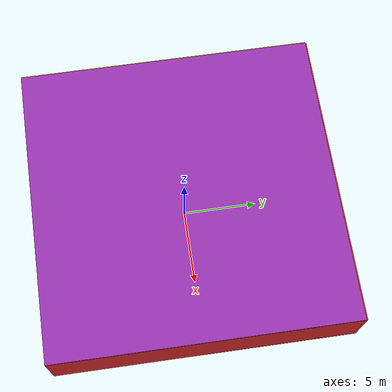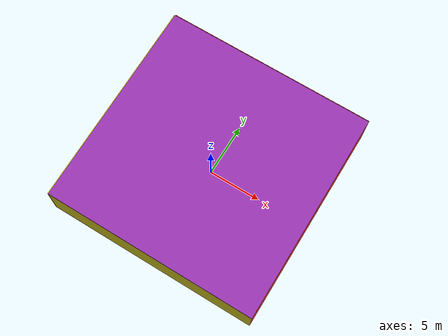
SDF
<sdf version="1.4">
 <world name="default">
  <physics type="ode">
   <max_step_size>0.001</max_step_size>
   <real_time_factor>1</real_time_factor>
   <real_time_update_rate>1000</real_time_update_rate>
   <gravity>0 0 -9.8</gravity>
  </physics>
  <scene><ambient>0.4 0.4 0.4 1</ambient><background>0.7 0.7 0.7 1</background><shadows>1</shadows></scene>
  <model name="Surrounding">
   <static>1</static>
   <link name="Ceiling">
    <collision name="Ceiling_Collision"><geometry><box><size>20 20 0.1</size></box></geometry></collision>
    <visual name="Ceiling_Visual">
     <geometry><box><size>20 20 0.1</size></box></geometry>
     <material>
      <script><uri>file://media/materials/scripts/gazebo.material</uri><name>Gazebo/PurpleGlow</name></script>
     </material>
    </visual>
    <pose>0 0 4.05 0 0 0</pose>
   </link>
   <link name="Wall_South">
    <collision name="Wall_South_Collision">
     <geometry><box><size>20 0 4</size></box></geometry>
     <pose>0 0 2 0 -0 0</pose>
    </collision>
    <visual name="Wall_South_Visual">
     <pose>0 0 2 0 -0 0</pose>
     <geometry><box><size>20 0 4</size></box></geometry>
     <material>
      <script><uri>file://media/materials/scripts/gazebo.material</uri><name>Gazebo/Yellow</name></script>
     </material>
    </visual>
    <velocity_decay><linear>0</linear><angular>0</angular></velocity_decay>
    <pose>0 -10 0 0 -0 0</pose>
   </link>
   <link name="Wall_East">
    <collision name="Wall_21_Collision">
     <geometry><box><size>20 0 4</size></box></geometry>
     <pose>0 0 2 0 -0 0</pose>
    </collision>
    <visual name="Wall_21_Visual">
     <pose>0 0 2 0 -0 0</pose>
     <geometry><box><size>20 0 4</size></box></geometry>
     <material>
      <script><uri>file://media/materials/scripts/gazebo.material</uri><name>Gazebo/RedBright</name></script>
     </material>
    </visual>
    <velocity_decay><linear>0</linear><angular>0</angular></velocity_decay>
    <pose>10 0 0 0 -0 1.5708</pose>
   </link>
   <link name="Wall_North">
    <collision name="Wall_22_Collision">
     <geometry><box><size>20 0.2 4</size></box></geometry>
     <pose>0 0 2 0 -0 0</pose>
    </collision>
    <visual name="Wall_22_Visual">
     <pose>0 0 2 0 -0 0</pose>
     <geometry><box><size>20 0.2 4</size></box></geometry>
     <material>
      <script><uri>file://media/materials/scripts/gazebo.material</uri><name>Gazebo/Red</name></script>
     </material>
    </visual>
    <velocity_decay><linear>0</linear><angular>0</angular></velocity_decay>
    <pose>0 10 0 0 -0 0</pose>
   </link>
   <link name="Wall_West">
    <collision name="Wall_23_Collision">
     <geometry><box><size>20 0.2 4</size></box></geometry>
     <pose>0 0 2 0 -0 0</pose>
    </collision>
    <visual name="Wall_23_Visual">
     <pose>0 0 2 0 -0 0</pose>
     <geometry><box><size>20 0.2 4</size></box></geometry>
     <material>
      <script><uri>file://media/materials/scripts/gazebo.material</uri><name>Gazebo/YellowGlow</name></script>
     </material>
    </visual>
    <velocity_decay><linear>0</linear><angular>0</angular></velocity_decay>
    <pose>-10 0 0 0 0 -1.5708</pose>
   </link>
   <link name="Ground_link">
    <collision name="collision">
     <pose>0 0 .05 0 -0 0</pose>
     <geometry><box><size>20 20 0.1</size></box></geometry>
    </collision>
    <visual name="visual">
     <pose>0 0 .05 0 -0 0</pose>
     <geometry><box><size>20 20 0.1</size></box></geometry>
     <material>
      <script><uri>file://media/materials/scripts/gazebo.material</uri><name>Gazebo/RedTransparent</name></script>
     </material>
    </visual>
   </link>
   <static>1</static>
  </model>
  <spherical_coordinates>
   <surface_model>EARTH_WGS84</surface_model>
   <latitude_deg>0</latitude_deg>
   <longitude_deg>0</longitude_deg>
   <elevation>0</elevation>
   <heading_deg>0</heading_deg>
  </spherical_coordinates>
  <light name="lightball_0" type="diffuse">
   <diffuse>0.8 0.8 0.8 1</diffuse>
   <specular>0.2 0.2 0.2 1</specular>
   <attenuation>
    <range>100</range>
    <constant>0.7</constant>
    <linear>0.01</linear>
    <quadratic>0.001</quadratic>
   </attenuation>
   <direction>-0.5 0.1 -0.9</direction>
   <pose>-9.75234250186 -4.87847903282 1.09683213277 0 0 0</pose>
  </light>
  <light name="lightball_1" type="diffuse">
   <diffuse>0.8 0.8 0.8 1</diffuse>
   <specular>0.2 0.2 0.2 1</specular>
   <attenuation>
    <range>100</range>
    <constant>0.7</constant>
    <linear>0.01</linear>
    <quadratic>0.001</quadratic>
   </attenuation>
   <direction>-0.5 0.1 -0.9</direction>
   <pose>3.05915667364 -8.10837009262 1.25406906646 0 0 0</pose>
  </light>
  <light name="lightball_2" type="diffuse">
   <diffuse>0.8 0.8 0.8 1</diffuse>
   <specular>0.2 0.2 0.2 1</specular>
   <attenuation>
    <range>100</range>
    <constant>0.7</constant>
    <linear>0.01</linear>
    <quadratic>0.001</quadratic>
   </attenuation>
   <direction>-0.5 0.1 -0.9</direction>
   <pose>-3.86799264385 -3.39205752775 2.06234881167 0 0 0</pose>
  </light>
  <light name="lightball_3" type="diffuse">
   <diffuse>0.8 0.8 0.8 1</diffuse>
   <specular>0.2 0.2 0.2 1</specular>
   <attenuation>
    <range>100</range>
    <constant>0.7</constant>
    <linear>0.01</linear>
    <quadratic>0.001</quadratic>
   </attenuation>
   <direction>-0.5 0.1 -0.9</direction>
   <pose>-4.33331504351 -2.26508326791 2.92391996742 0 0 0</pose>
  </light>
  <light name="lightball_4" type="diffuse">
   <diffuse>0.8 0.8 0.8 1</diffuse>
   <specular>0.2 0.2 0.2 1</specular>
   <attenuation>
    <range>100</range>
    <constant>0.7</constant>
    <linear>0.01</linear>
    <quadratic>0.001</quadratic>
   </attenuation>
   <direction>-0.5 0.1 -0.9</direction>
   <pose>1.15157217548 0.938555629288 2.800534238 0 0 0</pose>
  </light>
  <light name="lightball_5" type="diffuse">
   <diffuse>0.8 0.8 0.8 1</diffuse>
   <specular>0.2 0.2 0.2 1</specular>
   <attenuation>
    <range>100</range>
    <constant>0.7</constant>
    <linear>0.01</linear>
    <quadratic>0.001</quadratic>
   </attenuation>
   <direction>-0.5 0.1 -0.9</direction>
   <pose>8.57132061455 8.24096596774 1.33816489009 0 0 0</pose>
  </light>
  <light name="lightball_6" type="diffuse">
   <diffuse>0.8 0.8 0.8 1</diffuse>
   <specular>0.2 0.2 0.2 1</specular>
   <attenuation>
    <range>100</range>
    <constant>0.7</constant>
    <linear>0.01</linear>
    <quadratic>0.001</quadratic>
   </attenuation>
   <direction>-0.5 0.1 -0.9</direction>
   <pose>-6.99624469636 9.46346110575 1.76448112507 0 0 0</pose>
  </light>
  <light name="lightball_7" type="diffuse">
   <diffuse>0.8 0.8 0.8 1</diffuse>
   <specular>0.2 0.2 0.2 1</specular>
   <attenuation>
    <range>100</range>
    <constant>0.7</constant>
    <linear>0.01</linear>
    <quadratic>0.001</quadratic>
   </attenuation>
   <direction>-0.5 0.1 -0.9</direction>
   <pose>0.939266851568 0.298610910467 1.63913609376 0 0 0</pose>
  </light>
  <light name="lightball_8" type="diffuse">
   <diffuse>0.8 0.8 0.8 1</diffuse>
   <specular>0.2 0.2 0.2 1</specular>
   <attenuation>
    <range>100</range>
    <constant>0.7</constant>
    <linear>0.01</linear>
    <quadratic>0.001</quadratic>
   </attenuation>
   <direction>-0.5 0.1 -0.9</direction>
   <pose>7.42512293831 -1.3202632621 3.84103830908 0 0 0</pose>
  </light>
  <light name="lightball_9" type="diffuse">
   <diffuse>0.8 0.8 0.8 1</diffuse>
   <specular>0.2 0.2 0.2 1</specular>
   <attenuation>
    <range>100</range>
    <constant>0.7</constant>
    <linear>0.01</linear>
    <quadratic>0.001</quadratic>
   </attenuation>
   <direction>-0.5 0.1 -0.9</direction>
   <pose>9.39699592054 7.0952533479 2.89803863708 0 0 0</pose>
  </light>
  <light name="lightball_10" type="diffuse">
   <diffuse>0.8 0.8 0.8 1</diffuse>
   <specular>0.2 0.2 0.2 1</specular>
   <attenuation>
    <range>100</range>
    <constant>0.7</constant>
    <linear>0.01</linear>
    <quadratic>0.001</quadratic>
   </attenuation>
   <direction>-0.5 0.1 -0.9</direction>
   <pose>-0.496177226722 4.7306415968 1.50727232298 0 0 0</pose>
  </light>
  <include><uri>model://cabinet</uri><pose>-7.51609949966 -3.36985221124 0 0 0 1.74306527612</pose></include>
  <include><uri>model://cabinet</uri><pose>-5.09096944659 -0.942433965443 0 0 0 2.95256476247</pose></include>
  <include>
   <uri>model://robocup_3Dsim_goal</uri>
   <pose>5.14458179643 -7.29214116976 0 0 0 2.16139463288</pose>
  </include>
 </world>
</sdf>

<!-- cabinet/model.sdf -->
<sdf version="1.5">
  <model name="cabinet">
    <static>true</static>
    <link name="cabinet_bottom_plate">
      <inertial>
        <pose>0 0 -1 0 0 0</pose>
        <inertia>
          <ixx>2.050000</ixx>
          <ixy>0</ixy>
          <ixz>0</ixz>
          <iyy>2.050000</iyy>
          <iyz>0</iyz>
          <izz>2.050000</izz>
        </inertia>
        <mass>25.000000</mass>
      </inertial>
      <collision name="cabinet_bottom_plate_geom">
        <pose>0 0 0.010000 0 0 0</pose>
        <geometry>
          <box>
            <size>0.450000 0.450000 0.020000</size>
          </box>
        </geometry>
      </collision>
      <visual name="cabinet_bottom_plate_geom_visual">
        <pose>0 0 0.010000 0 0 0</pose>
        <geometry>
          <box>
            <size>0.450000 0.450000 0.020000</size>
          </box>
        </geometry>
        <material>
          <script>
            <uri>model://media/materials/scripts/gazebo.material</uri>
            <name>Gazebo/Wood</name>
          </script>
        </material>
      </visual>
      <collision name="cabinet_bottom_plate_geom_cabinet_back_plate">
        <pose>0.235000 0 0.510000 0 0 0</pose>
        <geometry>
          <box>
            <size>0.020000 0.450000 1.020000</size>
          </box>
        </geometry>
      </collision>
      <visual name="cabinet_bottom_plate_geom_cabinet_back_plate_visual">
        <pose>0.235000 0 0.510000 0 0 0</pose>
        <geometry>
          <box>
            <size>0.020000 0.450000 1.020000</size>
          </box>
        </geometry>
        <material>
          <script>
            <uri>model://media/materials/scripts/gazebo.material</uri>
            <name>Gazebo/Wood</name>
          </script>
        </material>
      </visual>
      <collision name="cabinet_bottom_plate_geom_cabinet_left_plate">
        <pose>0 0.235000 0.510000 0 0 0</pose>
        <geometry>
          <box>
            <size>0.450000 0.020000 1.020000</size>
          </box>
        </geometry>
      </collision>
      <visual name="cabinet_bottom_plate_geom_cabinet_left_plate_visual">
        <pose>0 0.235000 0.510000 0 0 0</pose>
        <geometry>
          <box>
            <size>0.450000 0.020000 1.020000</size>
          </box>
        </geometry>
        <material>
          <script>
            <uri>model://media/materials/scripts/gazebo.material</uri>
            <name>Gazebo/Wood</name>
          </script>
        </material>
      </visual>
      <collision name="cabinet_bottom_plate_geom_cabinet_middle_plate">
        <pose>0 0 0.510000 0 0 0</pose>
        <geometry>
          <box>
            <size>0.450000 0.450000 0.020000</size>
          </box>
        </geometry>
      </collision>
      <visual name="cabinet_bottom_plate_geom_cabinet_middle_plate_visual">
        <pose>0 0 0.510000 0 0 0</pose>
        <geometry>
          <box>
            <size>0.450000 0.450000 0.020000</size>
          </box>
        </geometry>
        <material>
          <script>
            <uri>model://media/materials/scripts/gazebo.material</uri>
            <name>Gazebo/Wood</name>
          </script>
        </material>
      </visual>
      <collision name="cabinet_bottom_plate_geom_cabinet_right_plate">
        <pose>0 -0.235000 0.510000 0 0 0</pose>
        <geometry>
          <box>
            <size>0.450000 0.020000 1.020000</size>
          </box>
        </geometry>
      </collision>
      <visual name="cabinet_bottom_plate_geom_cabinet_right_plate_visual">
        <pose>0 -0.235000 0.510000 0 0 0</pose>
        <geometry>
          <box>
            <size>0.450000 0.020000 1.020000</size>
          </box>
        </geometry>
        <material>
          <script>
            <uri>model://media/materials/scripts/gazebo.material</uri>
            <name>Gazebo/Wood</name>
          </script>
        </material>
      </visual>
      <collision name="cabinet_bottom_plate_geom_cabinet_top_plate">
        <pose>0 0 1.010000 0 0 0</pose>
        <geometry>
          <box>
            <size>0.450000 0.450000 0.020000</size>
          </box>
        </geometry>
      </collision>
      <visual name="cabinet_bottom_plate_geom_cabinet_top_plate_visual">
        <pose>0 0 1.010000 0 0 0</pose>
        <geometry>
          <box>
            <size>0.450000 0.450000 0.020000</size>
          </box>
        </geometry>
        <material>
          <script>
            <uri>model://media/materials/scripts/gazebo.material</uri>
            <name>Gazebo/Wood</name>
          </script>
        </material>
      </visual>
    </link>
  </model>
</sdf>

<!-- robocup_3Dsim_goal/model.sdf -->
<sdf version="1.5">
  <model name="robocup_3d_goal">
    <static>true</static>
    <link name="left_post">
      <pose>0 1.05 0.45 0 0 0</pose>
      <collision name="collision">
        <geometry>
          <cylinder>
            <radius>0.05</radius>
            <length>0.9</length>
          </cylinder>
        </geometry>
      </collision>
      <visual name="visual">
        <geometry>
          <cylinder>
            <radius>0.05</radius>
            <length>0.9</length>
          </cylinder>
        </geometry>
        <material>
          <script>
            <uri>file://media/materials/scripts/gazebo.material</uri>
            <name>Gazebo/ZincYellow</name>
          </script>
        </material>
      </visual>
    </link>
    <link name="left_support_horiz_lower">
      <pose>0.30 1.05 0.01 0 0 0</pose>
      <collision name="collision">
        <geometry>
          <box>
            <size>0.50 0.02 0.02</size>
          </box>
        </geometry>
      </collision>
      <visual name="visual">
        <geometry>
          <box>
            <size>0.50 0.02 0.02</size>
          </box>
        </geometry>
        <material>
          <script>
            <uri>file://media/materials/scripts/gazebo.material</uri>
            <name>Gazebo/White</name>
          </script>
        </material>
      </visual>
    </link>
    <link name="left_support_horiz_upper">
      <pose>0.30 1.05 0.79 0 0 0</pose>
      <collision name="collision">
        <geometry>
          <box>
            <size>0.50 0.02 0.02</size>
          </box>
        </geometry>
      </collision>
      <visual name="visual">
        <geometry>
          <box>
            <size>0.50 0.02 0.02</size>
          </box>
        </geometry>
        <material>
          <script>
            <uri>file://media/materials/scripts/gazebo.material</uri>
            <name>Gazebo/White</name>
          </script>
        </material>
      </visual>
    </link>
    <link name="left_support_vertical">
      <pose>0.56 1.05 0.4 0 1.5708 0</pose>
      <collision name="collision">
        <geometry>
          <box>
            <size>0.80 0.02 0.02</size>
          </box>
        </geometry>
      </collision>
      <visual name="visual">
        <geometry>
          <box>
            <size>0.80 0.02 0.02</size>
          </box>
        </geometry>
        <material>
          <script>
            <uri>file://media/materials/scripts/gazebo.material</uri>
            <name>Gazebo/White</name>
          </script>
        </material>
      </visual>
    </link>
    <link name="right_support_horiz_lower">
      <pose>0.30 -1.05 0.01 0 0 0</pose>
      <collision name="collision">
        <geometry>
          <box>
            <size>0.50 0.02 0.02</size>
          </box>
        </geometry>
      </collision>
      <visual name="visual">
        <geometry>
          <box>
            <size>0.50 0.02 0.02</size>
          </box>
        </geometry>
        <material>
          <script>
            <uri>file://media/materials/scripts/gazebo.material</uri>
            <name>Gazebo/White</name>
          </script>
        </material>
      </visual>
    </link>
    <link name="right_support_horiz_upper">
      <pose>0.30 -1.05 0.79 0 0 0</pose>
      <collision name="collision">
        <geometry>
          <box>
            <size>0.50 0.02 0.02</size>
          </box>
        </geometry>
      </collision>
      <visual name="visual">
        <geometry>
          <box>
            <size>0.50 0.02 0.02</size>
          </box>
        </geometry>
        <material>
          <script>
            <uri>file://media/materials/scripts/gazebo.material</uri>
            <name>Gazebo/White</name>
          </script>
        </material>
      </visual>
    </link>
    <link name="right_support_vertical">
      <pose>0.56 -1.05 0.4 0 1.5708 0</pose>
      <collision name="collision">
        <geometry>
          <box>
            <size>0.80 0.02 0.02</size>
          </box>
        </geometry>
      </collision>
      <visual name="visual">
        <geometry>
          <box>
            <size>0.80 0.02 0.02</size>
          </box>
        </geometry>
        <material>
          <script>
            <uri>file://media/materials/scripts/gazebo.material</uri>
            <name>Gazebo/White</name>
          </script>
        </material>
      </visual>
    </link>
    <link name="center_support_horiz_lower">
      <pose>0.56 0 0.01 0 1.5708 0</pose>
      <collision name="collision">
        <geometry>
          <box>
            <size>0.02 2.08 0.02</size>
          </box>
        </geometry>
      </collision>
      <visual name="visual">
        <geometry>
          <box>
            <size>0.02 2.08 0.02</size>
          </box>
        </geometry>
        <material>
          <script>
            <uri>file://media/materials/scripts/gazebo.material</uri>
            <name>Gazebo/White</name>
          </script>
        </material>
      </visual>
    </link>
    <link name="center_support_horiz_upper">
      <pose>0.56 0 0.79 0 1.5708 0</pose>
      <collision name="collision">
        <geometry>
          <box>
            <size>0.02 2.08 0.02</size>
          </box>
        </geometry>
      </collision>
      <visual name="visual">
        <geometry>
          <box>
            <size>0.02 2.08 0.02</size>
          </box>
        </geometry>
        <material>
          <script>
            <uri>file://media/materials/scripts/gazebo.material</uri>
            <name>Gazebo/White</name>
          </script>
        </material>
      </visual>
    </link>
    <link name="right_post">
      <pose>0 -1.05 0.45 0 0 0</pose>
      <collision name="collision">
        <geometry>
          <cylinder>
            <radius>0.05</radius>
            <length>0.9</length>
          </cylinder>
        </geometry>
      </collision>
      <visual name="visual">
        <geometry>
          <cylinder>
            <radius>0.05</radius>
            <length>0.9</length>
          </cylinder>
        </geometry>
        <material>
          <script>
            <uri>file://media/materials/scripts/gazebo.material</uri>
            <name>Gazebo/ZincYellow</name>
          </script>
        </material>
      </visual>
    </link>
    <link name="crossbar">
      <pose>0 0 0.85 1.57 1.57 0</pose>
      <collision name="collision">
        <geometry>
          <cylinder>
            <radius>0.05</radius>
            <length>2.0</length>
          </cylinder>
        </geometry>
      </collision>
      <visual name="visual">
        <geometry>
          <cylinder>
            <radius>0.05</radius>
            <length>2.0</length>
          </cylinder>
        </geometry>
        <material>
          <script>
            <uri>file://media/materials/scripts/gazebo.material</uri>
            <name>Gazebo/ZincYellow</name>
          </script>
        </material>
      </visual>
    </link>
    <link name="center_net">
      <pose>0.56 0 0.40 0 0 0</pose>
      <collision name="collision">
        <geometry>
          <box>
            <size>0.01 2.1 0.80</size>
          </box>
        </geometry>
      </collision>
      <visual name="visual">
        <geometry>
          <box>
            <size>0.01 2.1 0.80</size>
          </box>
        </geometry>
        <material>
          <script>
            <uri>model://../model_source/models/robocup09_spl_field/materials/scripts/</uri>
            <uri>model://../model_source/models/robocup09_spl_field/materials/textures/</uri>
            <name>RoboCup/Net</name>
          </script>
        </material>
      </visual>
    </link>
    <link name="left_net">
      <pose>0.30 1.05 0.40 0 0 0</pose>
      <collision name="collision">
        <geometry>
          <box>
            <size>0.50 0.01 0.76</size>
          </box>
        </geometry>
      </collision>
      <visual name="visual">
        <geometry>
          <box>
            <size>0.50 0.01 0.76</size>
          </box>
        </geometry>
        <material>
          <script>
            <uri>model://../model_source/models/robocup09_spl_field/materials/scripts/</uri>
            <uri>model://../model_source/models/robocup09_spl_field/materials/textures/</uri>
            <name>RoboCup/Net</name>
          </script>
        </material>
      </visual>
    </link>
    <link name="right_net">
      <pose>0.30 -1.05 0.40 0 0 0</pose>
      <collision name="collision">
        <geometry>
          <box>
            <size>0.50 0.01 0.76</size>
          </box>
        </geometry>
      </collision>
      <visual name="visual">
        <geometry>
          <box>
            <size>0.50 0.01 0.76</size>
          </box>
        </geometry>
        <material>
          <script>
            <uri>model://../model_source/models/robocup09_spl_field/materials/scripts/</uri>
            <uri>model://../model_source/models/robocup09_spl_field/materials/textures/</uri>
            <name>RoboCup/Net</name>
          </script>
        </material>
      </visual>
    </link>
  </model>
</sdf>
